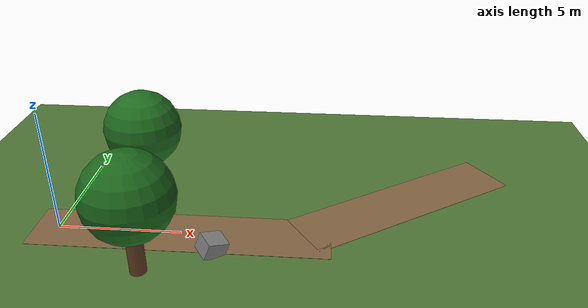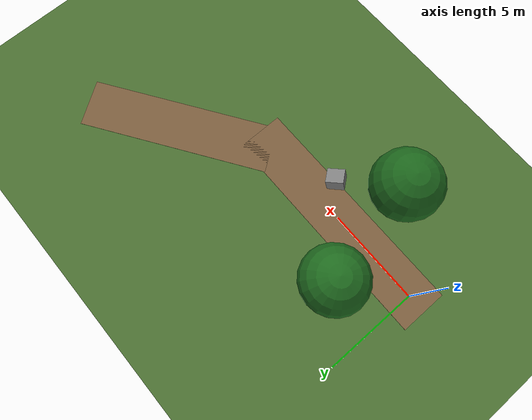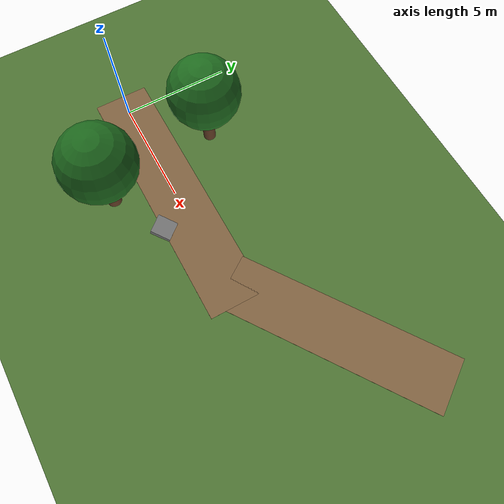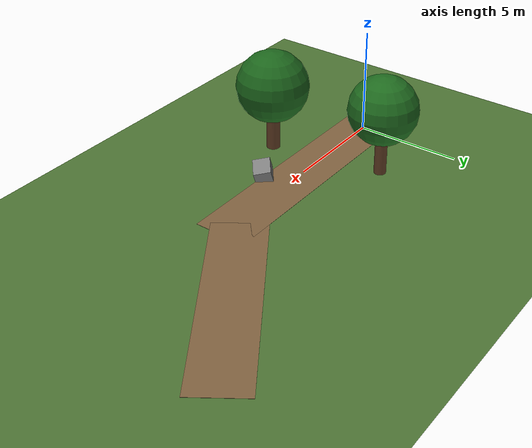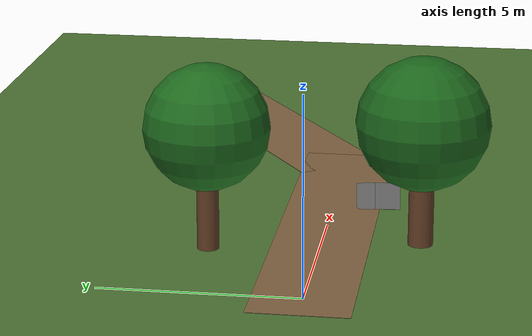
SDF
<?xml version="1.0" ?>
<sdf version="1.6">
  <world name="forest_outdoor_world">

    <physics type="ode">
      <max_step_size>0.002</max_step_size>
      <real_time_factor>1.0</real_time_factor>
      <real_time_update_rate>500</real_time_update_rate>
      <ode>
        <solver>
          <type>quick</type>
          <iters>50</iters>
          <sor>1.3</sor>
        </solver>
        <constraints>
          <cfm>0.0</cfm>
          <erp>0.2</erp>
          <contact_max_correcting_vel>100.0</contact_max_correcting_vel>
          <contact_surface_layer>0.001</contact_surface_layer>
        </constraints>
      </ode>
    </physics>

    <include>
      <uri>model://sun</uri>
    </include>

    <scene>
      <ambient>0.6 0.6 0.6 1.0</ambient>
      <background>0.7 0.8 0.9 1.0</background>
      <shadows>false</shadows>
      <sky>
        <clouds>
          <speed>12</speed>
        </clouds>
      </sky>
    </scene>

    <gui fullscreen='0'>
      <camera name='user_camera'>
        <pose>8.0 -8.0 6.0 0 0.55 2.2</pose>
        <view_controller>orbit</view_controller>
      </camera>
    </gui>

    <model name="ground_plane">
      <static>true</static>
      <link name="link">
        <collision name="collision">
          <geometry><plane><normal>0 0 1</normal><size>120 120</size></plane></geometry>
          <surface><friction><ode><mu>1.0</mu><mu2>0.8</mu2></ode></friction></surface>
        </collision>
        <visual name="visual">
          <geometry><plane><normal>0 0 1</normal><size>120 120</size></plane></geometry>
          <material><ambient>0.25 0.38 0.15 1.0</ambient><diffuse>0.3 0.45 0.2 1.0</diffuse></material>
        </visual>
      </link>
    </model>

    <!-- Forest Dirt Trail -->
    <model name="forest_trail">
      <static>true</static>
      <pose>0 0 0.005 0 0 0</pose>
      <link name="trail_link">
        <visual name="segment_1">
          <pose>5 0 0 0 0 0</pose>
          <geometry><box><size>12 2.5 0.01</size></box></geometry>
          <material><ambient>0.45 0.35 0.22 1.0</ambient><diffuse>0.5 0.38 0.25 1.0</diffuse></material>
        </visual>
        <visual name="segment_2">
          <pose>14 3 0 0 0 0.6</pose>
          <geometry><box><size>10 2.5 0.01</size></box></geometry>
          <material><ambient>0.45 0.35 0.22 1.0</ambient><diffuse>0.5 0.38 0.25 1.0</diffuse></material>
        </visual>
      </link>
    </model>

    <!-- Trees -->
    <model name="tree_1">
      <static>true</static><pose>3 2.8 0 0 0 0</pose>
      <link name="trunk">
        <collision name="col"><pose>0 0 1.5 0 0 0</pose><geometry><cylinder><radius>0.28</radius><length>3.0</length></cylinder></geometry></collision>
        <visual name="trunk_vis"><pose>0 0 1.5 0 0 0</pose><geometry><cylinder><radius>0.28</radius><length>3.0</length></cylinder></geometry><material><ambient>0.35 0.22 0.12 1.0</ambient><diffuse>0.4 0.25 0.15 1.0</diffuse></material></visual>
        <visual name="foliage"><pose>0 0 3.2 0 0 0</pose><geometry><sphere><radius>1.6</radius></sphere></geometry><material><ambient>0.1 0.35 0.1 1.0</ambient><diffuse>0.12 0.42 0.12 1.0</diffuse></material></visual>
      </link>
    </model>

    <model name="tree_2">
      <static>true</static><pose>4 -2.5 0 0 0 0</pose>
      <link name="trunk">
        <collision name="col"><pose>0 0 1.5 0 0 0</pose><geometry><cylinder><radius>0.32</radius><length>3.0</length></cylinder></geometry></collision>
        <visual name="trunk_vis"><pose>0 0 1.5 0 0 0</pose><geometry><cylinder><radius>0.32</radius><length>3.0</length></cylinder></geometry><material><ambient>0.35 0.22 0.12 1.0</ambient><diffuse>0.4 0.25 0.15 1.0</diffuse></material></visual>
        <visual name="foliage"><pose>0 0 3.2 0 0 0</pose><geometry><sphere><radius>1.7</radius></sphere></geometry><material><ambient>0.09 0.33 0.09 1.0</ambient><diffuse>0.11 0.4 0.11 1.0</diffuse></material></visual>
      </link>
    </model>

    <!-- Boulders -->
    <model name="rock_boulder_1">
      <static>true</static><pose>6.5 -1.2 0.35 0.2 0.3 0.7</pose>
      <link name="link">
        <collision name="col"><geometry><box><size>0.9 0.8 0.7</size></box></geometry></collision>
        <visual name="vis"><geometry><box><size>0.9 0.8 0.7</size></box></geometry><material><ambient>0.45 0.45 0.45 1.0</ambient><diffuse>0.5 0.5 0.5 1.0</diffuse></material></visual>
      </link>
    </model>

  </world>
</sdf>
